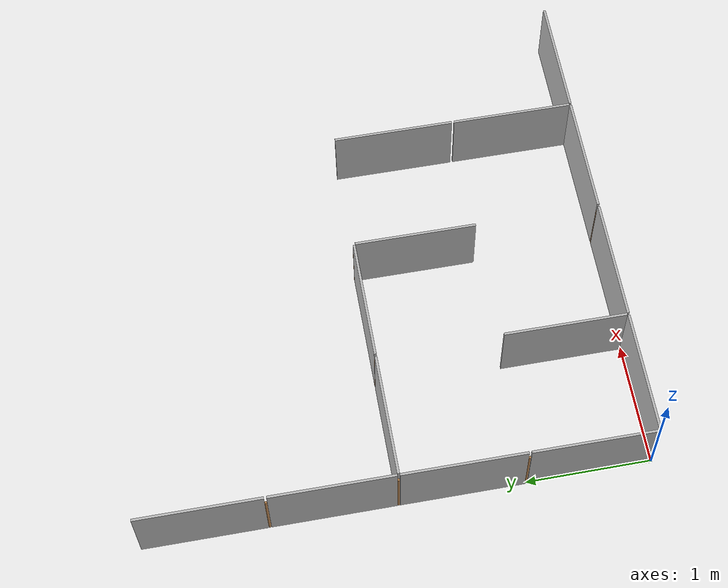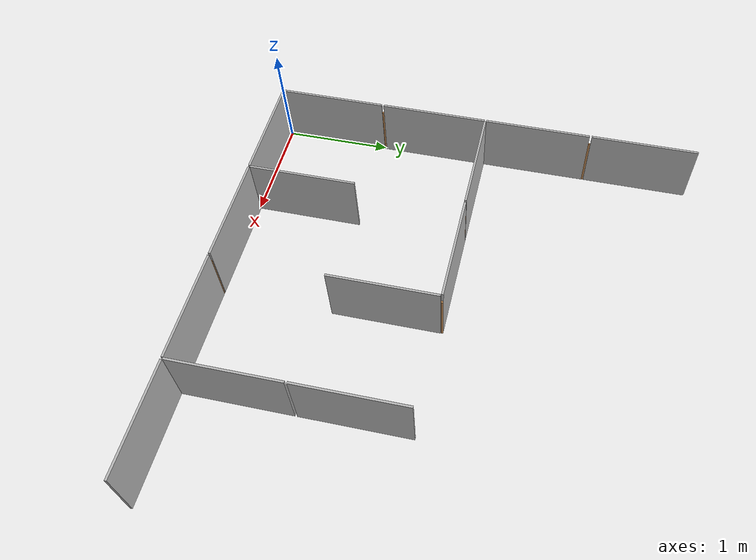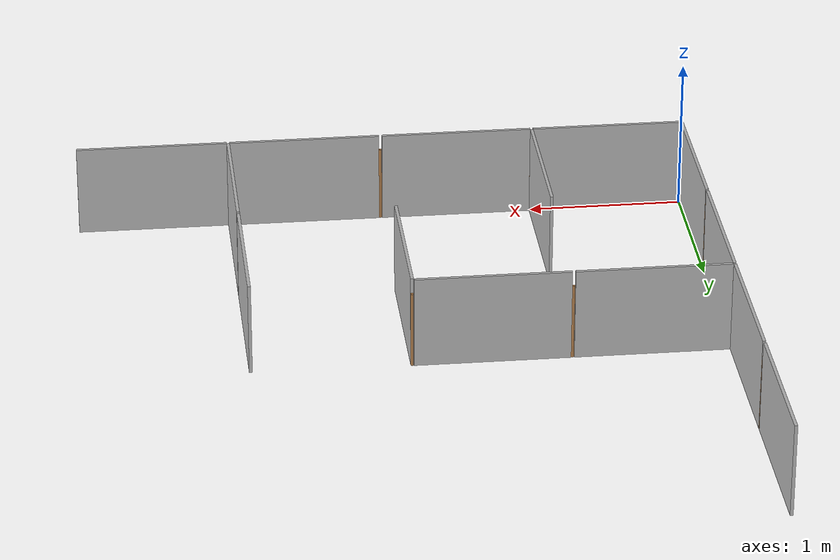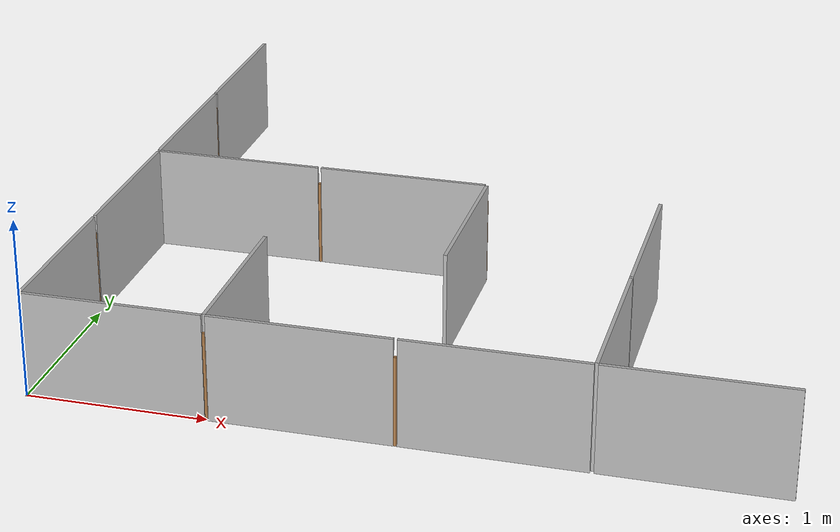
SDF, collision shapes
<sdf version="1.7">
 <model name="maze_3_6x6">
  <link name="plywood_panel_0_0_b::main">
   <pose>0 0 0 0 -0 1.571</pose>
   <visual name="visual">
    <pose>0.01 -0.01 0 3.14159 -1.57059 3.14159</pose>
    <geometry><mesh><scale>1 1 1</scale><uri>model://plywood_panel/meshes/plywood.dae</uri></mesh></geometry>
    <material><shader type="pixel"/></material>
   </visual>
   <collision name="collision">
    <pose>0 -0.5 0.3 -1.571 -0 -1.571</pose>
    <geometry><box><size>0.98 0.6 0.02</size></box></geometry>
    <surface>
     <friction>
      <ode><mu>1</mu><mu2>1</mu2><fdir1>0 0 0</fdir1><slip1>0</slip1><slip2>0</slip2></ode>
      <torsional>
       <coefficient>1</coefficient>
       <patch_radius>0</patch_radius>
       <surface_radius>0</surface_radius>
       <use_patch_radius>1</use_patch_radius>
       <ode><slip>0</slip></ode>
      </torsional>
     </friction>
     <bounce><restitution_coefficient>0</restitution_coefficient><threshold>1e+06</threshold></bounce>
     <contact>
      <collide_without_contact>0</collide_without_contact>
      <collide_without_contact_bitmask>1</collide_without_contact_bitmask>
      <collide_bitmask>1</collide_bitmask>
      <ode>
       <soft_cfm>0</soft_cfm>
       <soft_erp>0.2</soft_erp>
       <kp>1e+13</kp>
       <kd>1</kd>
       <max_vel>0.01</max_vel>
       <min_depth>0</min_depth>
      </ode>
      <bullet>
       <split_impulse>1</split_impulse>
       <split_impulse_penetration_threshold>-0.01</split_impulse_penetration_threshold>
       <soft_cfm>0</soft_cfm>
       <soft_erp>0.2</soft_erp>
       <kp>1e+13</kp>
       <kd>1</kd>
      </bullet>
     </contact>
    </surface>
   </collision>
  </link>
  <link name="plywood_panel_0_0_a::main">
   <pose>0 0 0 0 -0 3.14159</pose>
   <visual name="visual">
    <pose>0.01 -0.01 0 3.14159 -1.57059 3.14159</pose>
    <geometry><mesh><scale>1 1 1</scale><uri>model://plywood_panel/meshes/plywood.dae</uri></mesh></geometry>
    <material><shader type="pixel"/></material>
   </visual>
   <collision name="collision">
    <pose>0 -0.5 0.3 -1.571 -0 -1.571</pose>
    <geometry><box><size>0.98 0.6 0.02</size></box></geometry>
    <surface>
     <friction>
      <ode><mu>1</mu><mu2>1</mu2><fdir1>0 0 0</fdir1><slip1>0</slip1><slip2>0</slip2></ode>
      <torsional>
       <coefficient>1</coefficient>
       <patch_radius>0</patch_radius>
       <surface_radius>0</surface_radius>
       <use_patch_radius>1</use_patch_radius>
       <ode><slip>0</slip></ode>
      </torsional>
     </friction>
     <bounce><restitution_coefficient>0</restitution_coefficient><threshold>1e+06</threshold></bounce>
     <contact>
      <collide_without_contact>0</collide_without_contact>
      <collide_without_contact_bitmask>1</collide_without_contact_bitmask>
      <collide_bitmask>1</collide_bitmask>
      <ode>
       <soft_cfm>0</soft_cfm>
       <soft_erp>0.2</soft_erp>
       <kp>1e+13</kp>
       <kd>1</kd>
       <max_vel>0.01</max_vel>
       <min_depth>0</min_depth>
      </ode>
      <bullet>
       <split_impulse>1</split_impulse>
       <split_impulse_penetration_threshold>-0.01</split_impulse_penetration_threshold>
       <soft_cfm>0</soft_cfm>
       <soft_erp>0.2</soft_erp>
       <kp>1e+13</kp>
       <kd>1</kd>
      </bullet>
     </contact>
    </surface>
   </collision>
  </link>
  <link name="plywood_panel_0_1_a::main">
   <pose>0 1 0 0 -0 3.14159</pose>
   <visual name="visual">
    <pose>0.01 -0.01 0 3.14159 -1.57059 3.14159</pose>
    <geometry><mesh><scale>1 1 1</scale><uri>model://plywood_panel/meshes/plywood.dae</uri></mesh></geometry>
    <material><shader type="pixel"/></material>
   </visual>
   <collision name="collision">
    <pose>0 -0.5 0.3 -1.571 -0 -1.571</pose>
    <geometry><box><size>0.98 0.6 0.02</size></box></geometry>
    <surface>
     <friction>
      <ode><mu>1</mu><mu2>1</mu2><fdir1>0 0 0</fdir1><slip1>0</slip1><slip2>0</slip2></ode>
      <torsional>
       <coefficient>1</coefficient>
       <patch_radius>0</patch_radius>
       <surface_radius>0</surface_radius>
       <use_patch_radius>1</use_patch_radius>
       <ode><slip>0</slip></ode>
      </torsional>
     </friction>
     <bounce><restitution_coefficient>0</restitution_coefficient><threshold>1e+06</threshold></bounce>
     <contact>
      <collide_without_contact>0</collide_without_contact>
      <collide_without_contact_bitmask>1</collide_without_contact_bitmask>
      <collide_bitmask>1</collide_bitmask>
      <ode>
       <soft_cfm>0</soft_cfm>
       <soft_erp>0.2</soft_erp>
       <kp>1e+13</kp>
       <kd>1</kd>
       <max_vel>0.01</max_vel>
       <min_depth>0</min_depth>
      </ode>
      <bullet>
       <split_impulse>1</split_impulse>
       <split_impulse_penetration_threshold>-0.01</split_impulse_penetration_threshold>
       <soft_cfm>0</soft_cfm>
       <soft_erp>0.2</soft_erp>
       <kp>1e+13</kp>
       <kd>1</kd>
      </bullet>
     </contact>
    </surface>
   </collision>
  </link>
  <link name="plywood_panel_0_2_a::main">
   <pose>0 2 0 0 -0 3.14159</pose>
   <visual name="visual">
    <pose>0.01 -0.01 0 3.14159 -1.57059 3.14159</pose>
    <geometry><mesh><scale>1 1 1</scale><uri>model://plywood_panel/meshes/plywood.dae</uri></mesh></geometry>
    <material><shader type="pixel"/></material>
   </visual>
   <collision name="collision">
    <pose>0 -0.5 0.3 -1.571 -0 -1.571</pose>
    <geometry><box><size>0.98 0.6 0.02</size></box></geometry>
    <surface>
     <friction>
      <ode><mu>1</mu><mu2>1</mu2><fdir1>0 0 0</fdir1><slip1>0</slip1><slip2>0</slip2></ode>
      <torsional>
       <coefficient>1</coefficient>
       <patch_radius>0</patch_radius>
       <surface_radius>0</surface_radius>
       <use_patch_radius>1</use_patch_radius>
       <ode><slip>0</slip></ode>
      </torsional>
     </friction>
     <bounce><restitution_coefficient>0</restitution_coefficient><threshold>1e+06</threshold></bounce>
     <contact>
      <collide_without_contact>0</collide_without_contact>
      <collide_without_contact_bitmask>1</collide_without_contact_bitmask>
      <collide_bitmask>1</collide_bitmask>
      <ode>
       <soft_cfm>0</soft_cfm>
       <soft_erp>0.2</soft_erp>
       <kp>1e+13</kp>
       <kd>1</kd>
       <max_vel>0.01</max_vel>
       <min_depth>0</min_depth>
      </ode>
      <bullet>
       <split_impulse>1</split_impulse>
       <split_impulse_penetration_threshold>-0.01</split_impulse_penetration_threshold>
       <soft_cfm>0</soft_cfm>
       <soft_erp>0.2</soft_erp>
       <kp>1e+13</kp>
       <kd>1</kd>
      </bullet>
     </contact>
    </surface>
   </collision>
  </link>
  <link name="plywood_panel_0_3_a::main">
   <pose>0 3 0 0 -0 3.14159</pose>
   <visual name="visual">
    <pose>0.01 -0.01 0 3.14159 -1.57059 3.14159</pose>
    <geometry><mesh><scale>1 1 1</scale><uri>model://plywood_panel/meshes/plywood.dae</uri></mesh></geometry>
    <material><shader type="pixel"/></material>
   </visual>
   <collision name="collision">
    <pose>0 -0.5 0.3 -1.571 -0 -1.571</pose>
    <geometry><box><size>0.98 0.6 0.02</size></box></geometry>
    <surface>
     <friction>
      <ode><mu>1</mu><mu2>1</mu2><fdir1>0 0 0</fdir1><slip1>0</slip1><slip2>0</slip2></ode>
      <torsional>
       <coefficient>1</coefficient>
       <patch_radius>0</patch_radius>
       <surface_radius>0</surface_radius>
       <use_patch_radius>1</use_patch_radius>
       <ode><slip>0</slip></ode>
      </torsional>
     </friction>
     <bounce><restitution_coefficient>0</restitution_coefficient><threshold>1e+06</threshold></bounce>
     <contact>
      <collide_without_contact>0</collide_without_contact>
      <collide_without_contact_bitmask>1</collide_without_contact_bitmask>
      <collide_bitmask>1</collide_bitmask>
      <ode>
       <soft_cfm>0</soft_cfm>
       <soft_erp>0.2</soft_erp>
       <kp>1e+13</kp>
       <kd>1</kd>
       <max_vel>0.01</max_vel>
       <min_depth>0</min_depth>
      </ode>
      <bullet>
       <split_impulse>1</split_impulse>
       <split_impulse_penetration_threshold>-0.01</split_impulse_penetration_threshold>
       <soft_cfm>0</soft_cfm>
       <soft_erp>0.2</soft_erp>
       <kp>1e+13</kp>
       <kd>1</kd>
      </bullet>
     </contact>
    </surface>
   </collision>
  </link>
  <link name="plywood_panel_1_0_b::main">
   <pose>1 0 0 0 -0 1.571</pose>
   <visual name="visual">
    <pose>0.01 -0.01 0 3.14159 -1.57059 3.14159</pose>
    <geometry><mesh><scale>1 1 1</scale><uri>model://plywood_panel/meshes/plywood.dae</uri></mesh></geometry>
    <material><shader type="pixel"/></material>
   </visual>
   <collision name="collision">
    <pose>0 -0.5 0.3 -1.571 -0 -1.571</pose>
    <geometry><box><size>0.98 0.6 0.02</size></box></geometry>
    <surface>
     <friction>
      <ode><mu>1</mu><mu2>1</mu2><fdir1>0 0 0</fdir1><slip1>0</slip1><slip2>0</slip2></ode>
      <torsional>
       <coefficient>1</coefficient>
       <patch_radius>0</patch_radius>
       <surface_radius>0</surface_radius>
       <use_patch_radius>1</use_patch_radius>
       <ode><slip>0</slip></ode>
      </torsional>
     </friction>
     <bounce><restitution_coefficient>0</restitution_coefficient><threshold>1e+06</threshold></bounce>
     <contact>
      <collide_without_contact>0</collide_without_contact>
      <collide_without_contact_bitmask>1</collide_without_contact_bitmask>
      <collide_bitmask>1</collide_bitmask>
      <ode>
       <soft_cfm>0</soft_cfm>
       <soft_erp>0.2</soft_erp>
       <kp>1e+13</kp>
       <kd>1</kd>
       <max_vel>0.01</max_vel>
       <min_depth>0</min_depth>
      </ode>
      <bullet>
       <split_impulse>1</split_impulse>
       <split_impulse_penetration_threshold>-0.01</split_impulse_penetration_threshold>
       <soft_cfm>0</soft_cfm>
       <soft_erp>0.2</soft_erp>
       <kp>1e+13</kp>
       <kd>1</kd>
      </bullet>
     </contact>
    </surface>
   </collision>
  </link>
  <link name="plywood_panel_1_1_a::main">
   <pose>1 1 0 0 -0 0</pose>
   <visual name="visual">
    <pose>0.01 -0.01 0 3.14159 -1.57059 3.14159</pose>
    <geometry><mesh><scale>1 1 1</scale><uri>model://plywood_panel/meshes/plywood.dae</uri></mesh></geometry>
    <material><shader type="pixel"/></material>
   </visual>
   <collision name="collision">
    <pose>0 -0.5 0.3 -1.571 -0 -1.571</pose>
    <geometry><box><size>0.98 0.6 0.02</size></box></geometry>
    <surface>
     <friction>
      <ode><mu>1</mu><mu2>1</mu2><fdir1>0 0 0</fdir1><slip1>0</slip1><slip2>0</slip2></ode>
      <torsional>
       <coefficient>1</coefficient>
       <patch_radius>0</patch_radius>
       <surface_radius>0</surface_radius>
       <use_patch_radius>1</use_patch_radius>
       <ode><slip>0</slip></ode>
      </torsional>
     </friction>
     <bounce><restitution_coefficient>0</restitution_coefficient><threshold>1e+06</threshold></bounce>
     <contact>
      <collide_without_contact>0</collide_without_contact>
      <collide_without_contact_bitmask>1</collide_without_contact_bitmask>
      <collide_bitmask>1</collide_bitmask>
      <ode>
       <soft_cfm>0</soft_cfm>
       <soft_erp>0.2</soft_erp>
       <kp>1e+13</kp>
       <kd>1</kd>
       <max_vel>0.01</max_vel>
       <min_depth>0</min_depth>
      </ode>
      <bullet>
       <split_impulse>1</split_impulse>
       <split_impulse_penetration_threshold>-0.01</split_impulse_penetration_threshold>
       <soft_cfm>0</soft_cfm>
       <soft_erp>0.2</soft_erp>
       <kp>1e+13</kp>
       <kd>1</kd>
      </bullet>
     </contact>
    </surface>
   </collision>
  </link>
  <link name="plywood_panel_1_2_c::main">
   <pose>1 2 0 0 0 -1.5708</pose>
   <visual name="visual">
    <pose>0.01 -0.01 0 3.14159 -1.57059 3.14159</pose>
    <geometry><mesh><scale>1 1 1</scale><uri>model://plywood_panel/meshes/plywood.dae</uri></mesh></geometry>
    <material><shader type="pixel"/></material>
   </visual>
   <collision name="collision">
    <pose>0 -0.5 0.3 -1.571 -0 -1.571</pose>
    <geometry><box><size>0.98 0.6 0.02</size></box></geometry>
    <surface>
     <friction>
      <ode><mu>1</mu><mu2>1</mu2><fdir1>0 0 0</fdir1><slip1>0</slip1><slip2>0</slip2></ode>
      <torsional>
       <coefficient>1</coefficient>
       <patch_radius>0</patch_radius>
       <surface_radius>0</surface_radius>
       <use_patch_radius>1</use_patch_radius>
       <ode><slip>0</slip></ode>
      </torsional>
     </friction>
     <bounce><restitution_coefficient>0</restitution_coefficient><threshold>1e+06</threshold></bounce>
     <contact>
      <collide_without_contact>0</collide_without_contact>
      <collide_without_contact_bitmask>1</collide_without_contact_bitmask>
      <collide_bitmask>1</collide_bitmask>
      <ode>
       <soft_cfm>0</soft_cfm>
       <soft_erp>0.2</soft_erp>
       <kp>1e+13</kp>
       <kd>1</kd>
       <max_vel>0.01</max_vel>
       <min_depth>0</min_depth>
      </ode>
      <bullet>
       <split_impulse>1</split_impulse>
       <split_impulse_penetration_threshold>-0.01</split_impulse_penetration_threshold>
       <soft_cfm>0</soft_cfm>
       <soft_erp>0.2</soft_erp>
       <kp>1e+13</kp>
       <kd>1</kd>
      </bullet>
     </contact>
    </surface>
   </collision>
  </link>
  <link name="plywood_panel_2_0_b::main">
   <pose>2 0 0 0 -0 1.571</pose>
   <visual name="visual">
    <pose>0.01 -0.01 0 3.14159 -1.57059 3.14159</pose>
    <geometry><mesh><scale>1 1 1</scale><uri>model://plywood_panel/meshes/plywood.dae</uri></mesh></geometry>
    <material><shader type="pixel"/></material>
   </visual>
   <collision name="collision">
    <pose>0 -0.5 0.3 -1.571 -0 -1.571</pose>
    <geometry><box><size>0.98 0.6 0.02</size></box></geometry>
    <surface>
     <friction>
      <ode><mu>1</mu><mu2>1</mu2><fdir1>0 0 0</fdir1><slip1>0</slip1><slip2>0</slip2></ode>
      <torsional>
       <coefficient>1</coefficient>
       <patch_radius>0</patch_radius>
       <surface_radius>0</surface_radius>
       <use_patch_radius>1</use_patch_radius>
       <ode><slip>0</slip></ode>
      </torsional>
     </friction>
     <bounce><restitution_coefficient>0</restitution_coefficient><threshold>1e+06</threshold></bounce>
     <contact>
      <collide_without_contact>0</collide_without_contact>
      <collide_without_contact_bitmask>1</collide_without_contact_bitmask>
      <collide_bitmask>1</collide_bitmask>
      <ode>
       <soft_cfm>0</soft_cfm>
       <soft_erp>0.2</soft_erp>
       <kp>1e+13</kp>
       <kd>1</kd>
       <max_vel>0.01</max_vel>
       <min_depth>0</min_depth>
      </ode>
      <bullet>
       <split_impulse>1</split_impulse>
       <split_impulse_penetration_threshold>-0.01</split_impulse_penetration_threshold>
       <soft_cfm>0</soft_cfm>
       <soft_erp>0.2</soft_erp>
       <kp>1e+13</kp>
       <kd>1</kd>
      </bullet>
     </contact>
    </surface>
   </collision>
  </link>
  <link name="plywood_panel_2_2_a::main">
   <pose>2 2 0 0 -0 0</pose>
   <visual name="visual">
    <pose>0.01 -0.01 0 3.14159 -1.57059 3.14159</pose>
    <geometry><mesh><scale>1 1 1</scale><uri>model://plywood_panel/meshes/plywood.dae</uri></mesh></geometry>
    <material><shader type="pixel"/></material>
   </visual>
   <collision name="collision">
    <pose>0 -0.5 0.3 -1.571 -0 -1.571</pose>
    <geometry><box><size>0.98 0.6 0.02</size></box></geometry>
    <surface>
     <friction>
      <ode><mu>1</mu><mu2>1</mu2><fdir1>0 0 0</fdir1><slip1>0</slip1><slip2>0</slip2></ode>
      <torsional>
       <coefficient>1</coefficient>
       <patch_radius>0</patch_radius>
       <surface_radius>0</surface_radius>
       <use_patch_radius>1</use_patch_radius>
       <ode><slip>0</slip></ode>
      </torsional>
     </friction>
     <bounce><restitution_coefficient>0</restitution_coefficient><threshold>1e+06</threshold></bounce>
     <contact>
      <collide_without_contact>0</collide_without_contact>
      <collide_without_contact_bitmask>1</collide_without_contact_bitmask>
      <collide_bitmask>1</collide_bitmask>
      <ode>
       <soft_cfm>0</soft_cfm>
       <soft_erp>0.2</soft_erp>
       <kp>1e+13</kp>
       <kd>1</kd>
       <max_vel>0.01</max_vel>
       <min_depth>0</min_depth>
      </ode>
      <bullet>
       <split_impulse>1</split_impulse>
       <split_impulse_penetration_threshold>-0.01</split_impulse_penetration_threshold>
       <soft_cfm>0</soft_cfm>
       <soft_erp>0.2</soft_erp>
       <kp>1e+13</kp>
       <kd>1</kd>
      </bullet>
     </contact>
    </surface>
   </collision>
  </link>
  <link name="plywood_panel_2_2_c::main">
   <pose>2 2 0 0 0 -1.5708</pose>
   <visual name="visual">
    <pose>0.01 -0.01 0 3.14159 -1.57059 3.14159</pose>
    <geometry><mesh><scale>1 1 1</scale><uri>model://plywood_panel/meshes/plywood.dae</uri></mesh></geometry>
    <material><shader type="pixel"/></material>
   </visual>
   <collision name="collision">
    <pose>0 -0.5 0.3 -1.571 -0 -1.571</pose>
    <geometry><box><size>0.98 0.6 0.02</size></box></geometry>
    <surface>
     <friction>
      <ode><mu>1</mu><mu2>1</mu2><fdir1>0 0 0</fdir1><slip1>0</slip1><slip2>0</slip2></ode>
      <torsional>
       <coefficient>1</coefficient>
       <patch_radius>0</patch_radius>
       <surface_radius>0</surface_radius>
       <use_patch_radius>1</use_patch_radius>
       <ode><slip>0</slip></ode>
      </torsional>
     </friction>
     <bounce><restitution_coefficient>0</restitution_coefficient><threshold>1e+06</threshold></bounce>
     <contact>
      <collide_without_contact>0</collide_without_contact>
      <collide_without_contact_bitmask>1</collide_without_contact_bitmask>
      <collide_bitmask>1</collide_bitmask>
      <ode>
       <soft_cfm>0</soft_cfm>
       <soft_erp>0.2</soft_erp>
       <kp>1e+13</kp>
       <kd>1</kd>
       <max_vel>0.01</max_vel>
       <min_depth>0</min_depth>
      </ode>
      <bullet>
       <split_impulse>1</split_impulse>
       <split_impulse_penetration_threshold>-0.01</split_impulse_penetration_threshold>
       <soft_cfm>0</soft_cfm>
       <soft_erp>0.2</soft_erp>
       <kp>1e+13</kp>
       <kd>1</kd>
      </bullet>
     </contact>
    </surface>
   </collision>
  </link>
  <link name="plywood_panel_3_0_b::main">
   <pose>3 0 0 0 -0 1.571</pose>
   <visual name="visual">
    <pose>0.01 -0.01 0 3.14159 -1.57059 3.14159</pose>
    <geometry><mesh><scale>1 1 1</scale><uri>model://plywood_panel/meshes/plywood.dae</uri></mesh></geometry>
    <material><shader type="pixel"/></material>
   </visual>
   <collision name="collision">
    <pose>0 -0.5 0.3 -1.571 -0 -1.571</pose>
    <geometry><box><size>0.98 0.6 0.02</size></box></geometry>
    <surface>
     <friction>
      <ode><mu>1</mu><mu2>1</mu2><fdir1>0 0 0</fdir1><slip1>0</slip1><slip2>0</slip2></ode>
      <torsional>
       <coefficient>1</coefficient>
       <patch_radius>0</patch_radius>
       <surface_radius>0</surface_radius>
       <use_patch_radius>1</use_patch_radius>
       <ode><slip>0</slip></ode>
      </torsional>
     </friction>
     <bounce><restitution_coefficient>0</restitution_coefficient><threshold>1e+06</threshold></bounce>
     <contact>
      <collide_without_contact>0</collide_without_contact>
      <collide_without_contact_bitmask>1</collide_without_contact_bitmask>
      <collide_bitmask>1</collide_bitmask>
      <ode>
       <soft_cfm>0</soft_cfm>
       <soft_erp>0.2</soft_erp>
       <kp>1e+13</kp>
       <kd>1</kd>
       <max_vel>0.01</max_vel>
       <min_depth>0</min_depth>
      </ode>
      <bullet>
       <split_impulse>1</split_impulse>
       <split_impulse_penetration_threshold>-0.01</split_impulse_penetration_threshold>
       <soft_cfm>0</soft_cfm>
       <soft_erp>0.2</soft_erp>
       <kp>1e+13</kp>
       <kd>1</kd>
      </bullet>
     </contact>
    </surface>
   </collision>
  </link>
  <link name="plywood_panel_3_1_a::main">
   <pose>3 1 0 0 -0 0</pose>
   <visual name="visual">
    <pose>0.01 -0.01 0 3.14159 -1.57059 3.14159</pose>
    <geometry><mesh><scale>1 1 1</scale><uri>model://plywood_panel/meshes/plywood.dae</uri></mesh></geometry>
    <material><shader type="pixel"/></material>
   </visual>
   <collision name="collision">
    <pose>0 -0.5 0.3 -1.571 -0 -1.571</pose>
    <geometry><box><size>0.98 0.6 0.02</size></box></geometry>
    <surface>
     <friction>
      <ode><mu>1</mu><mu2>1</mu2><fdir1>0 0 0</fdir1><slip1>0</slip1><slip2>0</slip2></ode>
      <torsional>
       <coefficient>1</coefficient>
       <patch_radius>0</patch_radius>
       <surface_radius>0</surface_radius>
       <use_patch_radius>1</use_patch_radius>
       <ode><slip>0</slip></ode>
      </torsional>
     </friction>
     <bounce><restitution_coefficient>0</restitution_coefficient><threshold>1e+06</threshold></bounce>
     <contact>
      <collide_without_contact>0</collide_without_contact>
      <collide_without_contact_bitmask>1</collide_without_contact_bitmask>
      <collide_bitmask>1</collide_bitmask>
      <ode>
       <soft_cfm>0</soft_cfm>
       <soft_erp>0.2</soft_erp>
       <kp>1e+13</kp>
       <kd>1</kd>
       <max_vel>0.01</max_vel>
       <min_depth>0</min_depth>
      </ode>
      <bullet>
       <split_impulse>1</split_impulse>
       <split_impulse_penetration_threshold>-0.01</split_impulse_penetration_threshold>
       <soft_cfm>0</soft_cfm>
       <soft_erp>0.2</soft_erp>
       <kp>1e+13</kp>
       <kd>1</kd>
      </bullet>
     </contact>
    </surface>
   </collision>
  </link>
  <link name="plywood_panel_3_2_a::main">
   <pose>3 2 0 0 -0 0</pose>
   <visual name="visual">
    <pose>0.01 -0.01 0 3.14159 -1.57059 3.14159</pose>
    <geometry><mesh><scale>1 1 1</scale><uri>model://plywood_panel/meshes/plywood.dae</uri></mesh></geometry>
    <material><shader type="pixel"/></material>
   </visual>
   <collision name="collision">
    <pose>0 -0.5 0.3 -1.571 -0 -1.571</pose>
    <geometry><box><size>0.98 0.6 0.02</size></box></geometry>
    <surface>
     <friction>
      <ode><mu>1</mu><mu2>1</mu2><fdir1>0 0 0</fdir1><slip1>0</slip1><slip2>0</slip2></ode>
      <torsional>
       <coefficient>1</coefficient>
       <patch_radius>0</patch_radius>
       <surface_radius>0</surface_radius>
       <use_patch_radius>1</use_patch_radius>
       <ode><slip>0</slip></ode>
      </torsional>
     </friction>
     <bounce><restitution_coefficient>0</restitution_coefficient><threshold>1e+06</threshold></bounce>
     <contact>
      <collide_without_contact>0</collide_without_contact>
      <collide_without_contact_bitmask>1</collide_without_contact_bitmask>
      <collide_bitmask>1</collide_bitmask>
      <ode>
       <soft_cfm>0</soft_cfm>
       <soft_erp>0.2</soft_erp>
       <kp>1e+13</kp>
       <kd>1</kd>
       <max_vel>0.01</max_vel>
       <min_depth>0</min_depth>
      </ode>
      <bullet>
       <split_impulse>1</split_impulse>
       <split_impulse_penetration_threshold>-0.01</split_impulse_penetration_threshold>
       <soft_cfm>0</soft_cfm>
       <soft_erp>0.2</soft_erp>
       <kp>1e+13</kp>
       <kd>1</kd>
      </bullet>
     </contact>
    </surface>
   </collision>
  </link>
  <link name="wooden_joint_0_0_b::link_0">
   <pose>0 0 0.25 0 -0 0</pose>
   <inertial>
    <mass>0.00215981</mass>
    <inertia>
     <ixx>0.00018028</ixx>
     <ixy>0</ixy>
     <ixz>0</ixz>
     <iyy>0.00018028</iyy>
     <iyz>0</iyz>
     <izz>5.8e-07</izz>
    </inertia>
   </inertial>
   <visual name="visual">
    <geometry><cylinder><radius>0.01</radius><length>0.5</length></cylinder></geometry>
    <material>
     <lighting>1</lighting>
     <script><uri>file://media/materials/scripts/gazebo.material</uri><name>Gazebo/Wood</name></script>
     <shader type="pixel"><normal_map>__default__</normal_map></shader>
     <ambient>0.3 0.3 0.3 1</ambient>
     <diffuse>0.7 0.7 0.7 1</diffuse>
     <specular>0.01 0.01 0.01 1</specular>
     <emissive>0 0 0 1</emissive>
    </material>
   </visual>
   <collision name="collision">
    <geometry><cylinder><radius>0.01</radius><length>0.5</length></cylinder></geometry>
    <surface>
     <friction>
      <ode><mu>1</mu><mu2>1</mu2><fdir1>0 0 0</fdir1><slip1>0</slip1><slip2>0</slip2></ode>
      <torsional>
       <coefficient>1</coefficient>
       <patch_radius>0</patch_radius>
       <surface_radius>0</surface_radius>
       <use_patch_radius>1</use_patch_radius>
       <ode><slip>0</slip></ode>
      </torsional>
     </friction>
     <bounce><restitution_coefficient>0</restitution_coefficient><threshold>1e+06</threshold></bounce>
     <contact>
      <collide_without_contact>0</collide_without_contact>
      <collide_without_contact_bitmask>1</collide_without_contact_bitmask>
      <collide_bitmask>1</collide_bitmask>
      <ode>
       <soft_cfm>0</soft_cfm>
       <soft_erp>0.2</soft_erp>
       <kp>1e+13</kp>
       <kd>1</kd>
       <max_vel>0.01</max_vel>
       <min_depth>0</min_depth>
      </ode>
      <bullet>
       <split_impulse>1</split_impulse>
       <split_impulse_penetration_threshold>-0.01</split_impulse_penetration_threshold>
       <soft_cfm>0</soft_cfm>
       <soft_erp>0.2</soft_erp>
       <kp>1e+13</kp>
       <kd>1</kd>
      </bullet>
     </contact>
    </surface>
   </collision>
  </link>
  <link name="wooden_joint_0_1_a::link_0">
   <pose>0 1 0.25 0 -0 0</pose>
   <inertial>
    <mass>0.00215981</mass>
    <inertia>
     <ixx>0.00018028</ixx>
     <ixy>0</ixy>
     <ixz>0</ixz>
     <iyy>0.00018028</iyy>
     <iyz>0</iyz>
     <izz>5.8e-07</izz>
    </inertia>
   </inertial>
   <visual name="visual">
    <geometry><cylinder><radius>0.01</radius><length>0.5</length></cylinder></geometry>
    <material>
     <lighting>1</lighting>
     <script><uri>file://media/materials/scripts/gazebo.material</uri><name>Gazebo/Wood</name></script>
     <shader type="pixel"><normal_map>__default__</normal_map></shader>
     <ambient>0.3 0.3 0.3 1</ambient>
     <diffuse>0.7 0.7 0.7 1</diffuse>
     <specular>0.01 0.01 0.01 1</specular>
     <emissive>0 0 0 1</emissive>
    </material>
   </visual>
   <collision name="collision">
    <geometry><cylinder><radius>0.01</radius><length>0.5</length></cylinder></geometry>
    <surface>
     <friction>
      <ode><mu>1</mu><mu2>1</mu2><fdir1>0 0 0</fdir1><slip1>0</slip1><slip2>0</slip2></ode>
      <torsional>
       <coefficient>1</coefficient>
       <patch_radius>0</patch_radius>
       <surface_radius>0</surface_radius>
       <use_patch_radius>1</use_patch_radius>
       <ode><slip>0</slip></ode>
      </torsional>
     </friction>
     <bounce><restitution_coefficient>0</restitution_coefficient><threshold>1e+06</threshold></bounce>
     <contact>
      <collide_without_contact>0</collide_without_contact>
      <collide_without_contact_bitmask>1</collide_without_contact_bitmask>
      <collide_bitmask>1</collide_bitmask>
      <ode>
       <soft_cfm>0</soft_cfm>
       <soft_erp>0.2</soft_erp>
       <kp>1e+13</kp>
       <kd>1</kd>
       <max_vel>0.01</max_vel>
       <min_depth>0</min_depth>
      </ode>
      <bullet>
       <split_impulse>1</split_impulse>
       <split_impulse_penetration_threshold>-0.01</split_impulse_penetration_threshold>
       <soft_cfm>0</soft_cfm>
       <soft_erp>0.2</soft_erp>
       <kp>1e+13</kp>
       <kd>1</kd>
      </bullet>
     </contact>
    </surface>
   </collision>
  </link>
  <link name="wooden_joint_0_2_a::link_0">
   <pose>0 2 0.25 0 -0 0</pose>
   <inertial>
    <mass>0.00215981</mass>
    <inertia>
     <ixx>0.00018028</ixx>
     <ixy>0</ixy>
     <ixz>0</ixz>
     <iyy>0.00018028</iyy>
     <iyz>0</iyz>
     <izz>5.8e-07</izz>
    </inertia>
   </inertial>
   <visual name="visual">
    <geometry><cylinder><radius>0.01</radius><length>0.5</length></cylinder></geometry>
    <material>
     <lighting>1</lighting>
     <script><uri>file://media/materials/scripts/gazebo.material</uri><name>Gazebo/Wood</name></script>
     <shader type="pixel"><normal_map>__default__</normal_map></shader>
     <ambient>0.3 0.3 0.3 1</ambient>
     <diffuse>0.7 0.7 0.7 1</diffuse>
     <specular>0.01 0.01 0.01 1</specular>
     <emissive>0 0 0 1</emissive>
    </material>
   </visual>
   <collision name="collision">
    <geometry><cylinder><radius>0.01</radius><length>0.5</length></cylinder></geometry>
    <surface>
     <friction>
      <ode><mu>1</mu><mu2>1</mu2><fdir1>0 0 0</fdir1><slip1>0</slip1><slip2>0</slip2></ode>
      <torsional>
       <coefficient>1</coefficient>
       <patch_radius>0</patch_radius>
       <surface_radius>0</surface_radius>
       <use_patch_radius>1</use_patch_radius>
       <ode><slip>0</slip></ode>
      </torsional>
     </friction>
     <bounce><restitution_coefficient>0</restitution_coefficient><threshold>1e+06</threshold></bounce>
     <contact>
      <collide_without_contact>0</collide_without_contact>
      <collide_without_contact_bitmask>1</collide_without_contact_bitmask>
      <collide_bitmask>1</collide_bitmask>
      <ode>
       <soft_cfm>0</soft_cfm>
       <soft_erp>0.2</soft_erp>
       <kp>1e+13</kp>
       <kd>1</kd>
       <max_vel>0.01</max_vel>
       <min_depth>0</min_depth>
      </ode>
      <bullet>
       <split_impulse>1</split_impulse>
       <split_impulse_penetration_threshold>-0.01</split_impulse_penetration_threshold>
       <soft_cfm>0</soft_cfm>
       <soft_erp>0.2</soft_erp>
       <kp>1e+13</kp>
       <kd>1</kd>
      </bullet>
     </contact>
    </surface>
   </collision>
  </link>
  <link name="wooden_joint_0_3_a::link_0">
   <pose>0 3 0.25 0 -0 0</pose>
   <inertial>
    <mass>0.00215981</mass>
    <inertia>
     <ixx>0.00018028</ixx>
     <ixy>0</ixy>
     <ixz>0</ixz>
     <iyy>0.00018028</iyy>
     <iyz>0</iyz>
     <izz>5.8e-07</izz>
    </inertia>
   </inertial>
   <visual name="visual">
    <geometry><cylinder><radius>0.01</radius><length>0.5</length></cylinder></geometry>
    <material>
     <lighting>1</lighting>
     <script><uri>file://media/materials/scripts/gazebo.material</uri><name>Gazebo/Wood</name></script>
     <shader type="pixel"><normal_map>__default__</normal_map></shader>
     <ambient>0.3 0.3 0.3 1</ambient>
     <diffuse>0.7 0.7 0.7 1</diffuse>
     <specular>0.01 0.01 0.01 1</specular>
     <emissive>0 0 0 1</emissive>
    </material>
   </visual>
   <collision name="collision">
    <geometry><cylinder><radius>0.01</radius><length>0.5</length></cylinder></geometry>
    <surface>
     <friction>
      <ode><mu>1</mu><mu2>1</mu2><fdir1>0 0 0</fdir1><slip1>0</slip1><slip2>0</slip2></ode>
      <torsional>
       <coefficient>1</coefficient>
       <patch_radius>0</patch_radius>
       <surface_radius>0</surface_radius>
       <use_patch_radius>1</use_patch_radius>
       <ode><slip>0</slip></ode>
      </torsional>
     </friction>
     <bounce><restitution_coefficient>0</restitution_coefficient><threshold>1e+06</threshold></bounce>
     <contact>
      <collide_without_contact>0</collide_without_contact>
      <collide_without_contact_bitmask>1</collide_without_contact_bitmask>
      <collide_bitmask>1</collide_bitmask>
      <ode>
       <soft_cfm>0</soft_cfm>
       <soft_erp>0.2</soft_erp>
       <kp>1e+13</kp>
       <kd>1</kd>
       <max_vel>0.01</max_vel>
       <min_depth>0</min_depth>
      </ode>
      <bullet>
       <split_impulse>1</split_impulse>
       <split_impulse_penetration_threshold>-0.01</split_impulse_penetration_threshold>
       <soft_cfm>0</soft_cfm>
       <soft_erp>0.2</soft_erp>
       <kp>1e+13</kp>
       <kd>1</kd>
      </bullet>
     </contact>
    </surface>
   </collision>
  </link>
  <link name="wooden_joint_1_0_b::link_0">
   <pose>1 0 0.25 0 -0 0</pose>
   <inertial>
    <mass>0.00215981</mass>
    <inertia>
     <ixx>0.00018028</ixx>
     <ixy>0</ixy>
     <ixz>0</ixz>
     <iyy>0.00018028</iyy>
     <iyz>0</iyz>
     <izz>5.8e-07</izz>
    </inertia>
   </inertial>
   <visual name="visual">
    <geometry><cylinder><radius>0.01</radius><length>0.5</length></cylinder></geometry>
    <material>
     <lighting>1</lighting>
     <script><uri>file://media/materials/scripts/gazebo.material</uri><name>Gazebo/Wood</name></script>
     <shader type="pixel"><normal_map>__default__</normal_map></shader>
     <ambient>0.3 0.3 0.3 1</ambient>
     <diffuse>0.7 0.7 0.7 1</diffuse>
     <specular>0.01 0.01 0.01 1</specular>
     <emissive>0 0 0 1</emissive>
    </material>
   </visual>
   <collision name="collision">
    <geometry><cylinder><radius>0.01</radius><length>0.5</length></cylinder></geometry>
    <surface>
     <friction>
      <ode><mu>1</mu><mu2>1</mu2><fdir1>0 0 0</fdir1><slip1>0</slip1><slip2>0</slip2></ode>
      <torsional>
       <coefficient>1</coefficient>
       <patch_radius>0</patch_radius>
       <surface_radius>0</surface_radius>
       <use_patch_radius>1</use_patch_radius>
       <ode><slip>0</slip></ode>
      </torsional>
     </friction>
     <bounce><restitution_coefficient>0</restitution_coefficient><threshold>1e+06</threshold></bounce>
     <contact>
      <collide_without_contact>0</collide_without_contact>
      <collide_without_contact_bitmask>1</collide_without_contact_bitmask>
      <collide_bitmask>1</collide_bitmask>
      <ode>
       <soft_cfm>0</soft_cfm>
       <soft_erp>0.2</soft_erp>
       <kp>1e+13</kp>
       <kd>1</kd>
       <max_vel>0.01</max_vel>
       <min_depth>0</min_depth>
      </ode>
      <bullet>
       <split_impulse>1</split_impulse>
       <split_impulse_penetration_threshold>-0.01</split_impulse_penetration_threshold>
       <soft_cfm>0</soft_cfm>
       <soft_erp>0.2</soft_erp>
       <kp>1e+13</kp>
       <kd>1</kd>
      </bullet>
     </contact>
    </surface>
   </collision>
  </link>
  <link name="wooden_joint_1_2::link_0">
   <pose>1 2 0.25 0 -0 0</pose>
   <inertial>
    <mass>0.00215981</mass>
    <inertia>
     <ixx>0.00018028</ixx>
     <ixy>0</ixy>
     <ixz>0</ixz>
     <iyy>0.00018028</iyy>
     <iyz>0</iyz>
     <izz>5.8e-07</izz>
    </inertia>
   </inertial>
   <visual name="visual">
    <geometry><cylinder><radius>0.01</radius><length>0.5</length></cylinder></geometry>
    <material>
     <lighting>1</lighting>
     <script><uri>file://media/materials/scripts/gazebo.material</uri><name>Gazebo/Wood</name></script>
     <shader type="pixel"><normal_map>__default__</normal_map></shader>
     <ambient>0.3 0.3 0.3 1</ambient>
     <diffuse>0.7 0.7 0.7 1</diffuse>
     <specular>0.01 0.01 0.01 1</specular>
     <emissive>0 0 0 1</emissive>
    </material>
   </visual>
   <collision name="collision">
    <geometry><cylinder><radius>0.01</radius><length>0.5</length></cylinder></geometry>
    <surface>
     <friction>
      <ode><mu>1</mu><mu2>1</mu2><fdir1>0 0 0</fdir1><slip1>0</slip1><slip2>0</slip2></ode>
      <torsional>
       <coefficient>1</coefficient>
       <patch_radius>0</patch_radius>
       <surface_radius>0</surface_radius>
       <use_patch_radius>1</use_patch_radius>
       <ode><slip>0</slip></ode>
      </torsional>
     </friction>
     <bounce><restitution_coefficient>0</restitution_coefficient><threshold>1e+06</threshold></bounce>
     <contact>
      <collide_without_contact>0</collide_without_contact>
      <collide_without_contact_bitmask>1</collide_without_contact_bitmask>
      <collide_bitmask>1</collide_bitmask>
      <ode>
       <soft_cfm>0</soft_cfm>
       <soft_erp>0.2</soft_erp>
       <kp>1e+13</kp>
       <kd>1</kd>
       <max_vel>0.01</max_vel>
       <min_depth>0</min_depth>
      </ode>
      <bullet>
       <split_impulse>1</split_impulse>
       <split_impulse_penetration_threshold>-0.01</split_impulse_penetration_threshold>
       <soft_cfm>0</soft_cfm>
       <soft_erp>0.2</soft_erp>
       <kp>1e+13</kp>
       <kd>1</kd>
      </bullet>
     </contact>
    </surface>
   </collision>
  </link>
  <link name="wooden_joint_2_0_b::link_0">
   <pose>2 0 0.25 0 -0 0</pose>
   <inertial>
    <mass>0.00215981</mass>
    <inertia>
     <ixx>0.00018028</ixx>
     <ixy>0</ixy>
     <ixz>0</ixz>
     <iyy>0.00018028</iyy>
     <iyz>0</iyz>
     <izz>5.8e-07</izz>
    </inertia>
   </inertial>
   <visual name="visual">
    <geometry><cylinder><radius>0.01</radius><length>0.5</length></cylinder></geometry>
    <material>
     <lighting>1</lighting>
     <script><uri>file://media/materials/scripts/gazebo.material</uri><name>Gazebo/Wood</name></script>
     <shader type="pixel"><normal_map>__default__</normal_map></shader>
     <ambient>0.3 0.3 0.3 1</ambient>
     <diffuse>0.7 0.7 0.7 1</diffuse>
     <specular>0.01 0.01 0.01 1</specular>
     <emissive>0 0 0 1</emissive>
    </material>
   </visual>
   <collision name="collision">
    <geometry><cylinder><radius>0.01</radius><length>0.5</length></cylinder></geometry>
    <surface>
     <friction>
      <ode><mu>1</mu><mu2>1</mu2><fdir1>0 0 0</fdir1><slip1>0</slip1><slip2>0</slip2></ode>
      <torsional>
       <coefficient>1</coefficient>
       <patch_radius>0</patch_radius>
       <surface_radius>0</surface_radius>
       <use_patch_radius>1</use_patch_radius>
       <ode><slip>0</slip></ode>
      </torsional>
     </friction>
     <bounce><restitution_coefficient>0</restitution_coefficient><threshold>1e+06</threshold></bounce>
     <contact>
      <collide_without_contact>0</collide_without_contact>
      <collide_without_contact_bitmask>1</collide_without_contact_bitmask>
      <collide_bitmask>1</collide_bitmask>
      <ode>
       <soft_cfm>0</soft_cfm>
       <soft_erp>0.2</soft_erp>
       <kp>1e+13</kp>
       <kd>1</kd>
       <max_vel>0.01</max_vel>
       <min_depth>0</min_depth>
      </ode>
      <bullet>
       <split_impulse>1</split_impulse>
       <split_impulse_penetration_threshold>-0.01</split_impulse_penetration_threshold>
       <soft_cfm>0</soft_cfm>
       <soft_erp>0.2</soft_erp>
       <kp>1e+13</kp>
       <kd>1</kd>
      </bullet>
     </contact>
    </surface>
   </collision>
  </link>
  <link name="wooden_joint_2_2::link_0">
   <pose>2 2 0.25 0 -0 0</pose>
   <inertial>
    <mass>0.00215981</mass>
    <inertia>
     <ixx>0.00018028</ixx>
     <ixy>0</ixy>
     <ixz>0</ixz>
     <iyy>0.00018028</iyy>
     <iyz>0</iyz>
     <izz>5.8e-07</izz>
    </inertia>
   </inertial>
   <visual name="visual">
    <geometry><cylinder><radius>0.01</radius><length>0.5</length></cylinder></geometry>
    <material>
     <lighting>1</lighting>
     <script><uri>file://media/materials/scripts/gazebo.material</uri><name>Gazebo/Wood</name></script>
     <shader type="pixel"><normal_map>__default__</normal_map></shader>
     <ambient>0.3 0.3 0.3 1</ambient>
     <diffuse>0.7 0.7 0.7 1</diffuse>
     <specular>0.01 0.01 0.01 1</specular>
     <emissive>0 0 0 1</emissive>
    </material>
   </visual>
   <collision name="collision">
    <geometry><cylinder><radius>0.01</radius><length>0.5</length></cylinder></geometry>
    <surface>
     <friction>
      <ode><mu>1</mu><mu2>1</mu2><fdir1>0 0 0</fdir1><slip1>0</slip1><slip2>0</slip2></ode>
      <torsional>
       <coefficient>1</coefficient>
       <patch_radius>0</patch_radius>
       <surface_radius>0</surface_radius>
       <use_patch_radius>1</use_patch_radius>
       <ode><slip>0</slip></ode>
      </torsional>
     </friction>
     <bounce><restitution_coefficient>0</restitution_coefficient><threshold>1e+06</threshold></bounce>
     <contact>
      <collide_without_contact>0</collide_without_contact>
      <collide_without_contact_bitmask>1</collide_without_contact_bitmask>
      <collide_bitmask>1</collide_bitmask>
      <ode>
       <soft_cfm>0</soft_cfm>
       <soft_erp>0.2</soft_erp>
       <kp>1e+13</kp>
       <kd>1</kd>
       <max_vel>0.01</max_vel>
       <min_depth>0</min_depth>
      </ode>
      <bullet>
       <split_impulse>1</split_impulse>
       <split_impulse_penetration_threshold>-0.01</split_impulse_penetration_threshold>
       <soft_cfm>0</soft_cfm>
       <soft_erp>0.2</soft_erp>
       <kp>1e+13</kp>
       <kd>1</kd>
      </bullet>
     </contact>
    </surface>
   </collision>
  </link>
  <static>1</static>
 </model>
</sdf>
